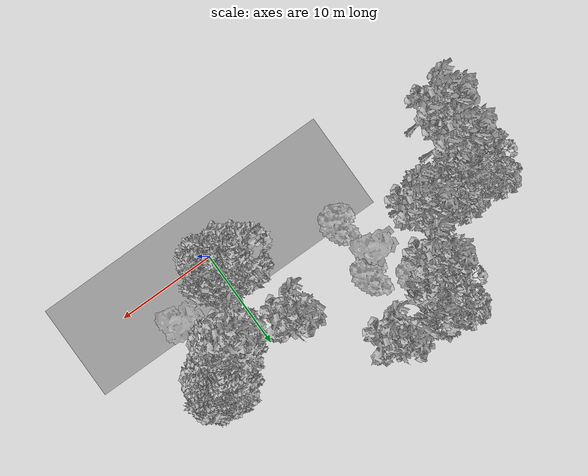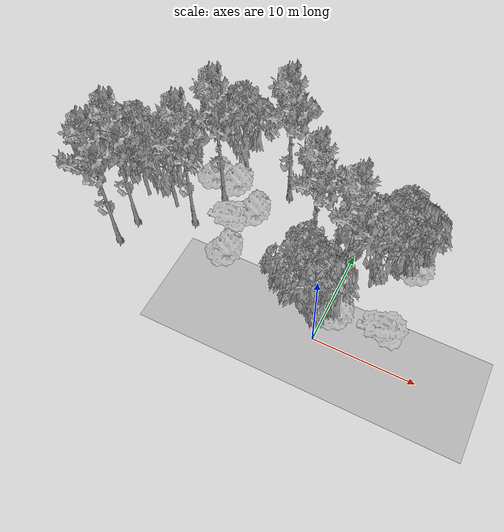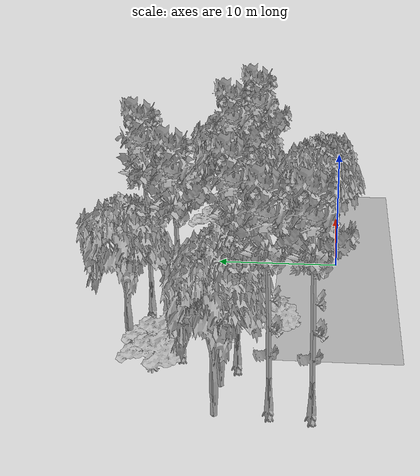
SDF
<sdf version="1.7">
 <world name="default">
  <model name="ground_plane">
   <static>1</static>
   <link name="link">
    <collision name="collision">
     <pose>-50 0 0 0 -0 0</pose>
     <geometry><plane><normal>0 0 1</normal><size>100 100</size></plane></geometry>
     <surface><contact><ode><min_depth>0.01</min_depth><max_vel>0</max_vel></ode></contact></surface>
    </collision>
    <visual name="grass">
     <cast_shadows>0</cast_shadows>
     <geometry>
      <mesh>
       <scale>0.5814285714285714 0.18142857142857144 0.1</scale>
       <uri>file://grass_plane/meshes/grass_plane.dae</uri>
      </mesh>
     </geometry>
    </visual>
   </link>
  </model>
  <model name="Tree 1">
   <static>1</static>
   <pose>-14.95214326042474 12.86118347821349 0 1.57079 -0 0</pose>
   <link name="link">
    <collision name="collision">
     <geometry><mesh><scale>4 2.5 4</scale><uri>model://tree_1/meshes/tree_1.obj</uri></mesh></geometry>
    </collision>
    <visual name="visual">
     <geometry><mesh><scale>4 2.5 4</scale><uri>model://tree_1/meshes/tree_1.obj</uri></mesh></geometry>
    </visual>
   </link>
  </model>
  <model name="Tree 4">
   <static>1</static>
   <pose>5.58407054845911 3.052981912878497 0 1.57079 -0 0</pose>
   <link name="link">
    <collision name="collision">
     <geometry><mesh><scale>3 2 3</scale><uri>model://tree_3/meshes/tree_3.obj</uri></mesh></geometry>
    </collision>
    <visual name="visual">
     <geometry><mesh><scale>3 2 3</scale><uri>model://tree_3/meshes/tree_3.obj</uri></mesh></geometry>
    </visual>
   </link>
  </model>
  <model name="Tree 15">
   <static>1</static>
   <pose>-22.051231511386494 4.27168029875806 0 1.57079 -0 0</pose>
   <link name="link">
    <collision name="collision">
     <geometry><mesh><scale>3.5 5 3.5</scale><uri>model://tree_9/meshes/tree_9.obj</uri></mesh></geometry>
    </collision>
    <visual name="visual">
     <geometry><mesh><scale>3.5 5 3.5</scale><uri>model://tree_9/meshes/tree_9.obj</uri></mesh></geometry>
    </visual>
   </link>
  </model>
  <model name="Tree 42">
   <static>1</static>
   <pose>4.733336476455996 9.573123390964305 0 1.57079 -0 0</pose>
   <link name="link">
    <collision name="collision">
     <geometry><mesh><scale>3.5 5 3.5</scale><uri>model://tree_2/meshes/tree_2.obj</uri></mesh></geometry>
    </collision>
    <visual name="visual">
     <geometry><mesh><scale>3.5 5 3.5</scale><uri>model://tree_2/meshes/tree_2.obj</uri></mesh></geometry>
    </visual>
   </link>
  </model>
  <model name="Tree 46">
   <static>1</static>
   <pose>5.954832692624549 10.95492946948189 0 1.57079 -0 0</pose>
   <link name="link">
    <collision name="collision">
     <geometry><mesh><scale>4 2.5 4</scale><uri>model://tree_1/meshes/tree_1.obj</uri></mesh></geometry>
    </collision>
    <visual name="visual">
     <geometry><mesh><scale>4 2.5 4</scale><uri>model://tree_1/meshes/tree_1.obj</uri></mesh></geometry>
    </visual>
   </link>
  </model>
  <model name="Tree 47">
   <static>1</static>
   <pose>-11.567636651969373 10.23903266482154 0 1.57079 -0 0</pose>
   <link name="link">
    <collision name="collision">
     <geometry><mesh><scale>4 2.5 4</scale><uri>model://tree_1/meshes/tree_1.obj</uri></mesh></geometry>
    </collision>
    <visual name="visual">
     <geometry><mesh><scale>4 2.5 4</scale><uri>model://tree_1/meshes/tree_1.obj</uri></mesh></geometry>
    </visual>
   </link>
  </model>
  <model name="Tree 57">
   <static>1</static>
   <pose>-1.949571450964001 2.142068206218301 0 1.57079 -0 0</pose>
   <link name="link">
    <collision name="collision">
     <geometry><mesh><scale>3.5 5 3.5</scale><uri>model://tree_2/meshes/tree_2.obj</uri></mesh></geometry>
    </collision>
    <visual name="visual">
     <geometry><mesh><scale>3.5 5 3.5</scale><uri>model://tree_2/meshes/tree_2.obj</uri></mesh></geometry>
    </visual>
   </link>
  </model>
  <model name="Tree 60">
   <static>1</static>
   <pose>-0.6481637504976092 1.3012135888520397 0 1.57079 -0 0</pose>
   <link name="link">
    <collision name="collision">
     <geometry><mesh><scale>3.5 5 3.5</scale><uri>model://tree_2/meshes/tree_2.obj</uri></mesh></geometry>
    </collision>
    <visual name="visual">
     <geometry><mesh><scale>3.5 5 3.5</scale><uri>model://tree_2/meshes/tree_2.obj</uri></mesh></geometry>
    </visual>
   </link>
  </model>
  <model name="Tree 76">
   <static>1</static>
   <pose>-22.383585650882107 1.464619174953583 0 1.57079 -0 0</pose>
   <link name="link">
    <collision name="collision">
     <geometry><mesh><scale>3.5 5 3.5</scale><uri>model://tree_9/meshes/tree_9.obj</uri></mesh></geometry>
    </collision>
    <visual name="visual">
     <geometry><mesh><scale>3.5 5 3.5</scale><uri>model://tree_9/meshes/tree_9.obj</uri></mesh></geometry>
    </visual>
   </link>
  </model>
  <model name="Tree 81">
   <static>1</static>
   <pose>-11.864375615900691 4.690574913838553 0 1.57079 -0 0</pose>
   <link name="link">
    <collision name="collision">
     <geometry><mesh><scale>4 2.5 4</scale><uri>model://tree_1/meshes/tree_1.obj</uri></mesh></geometry>
    </collision>
    <visual name="visual">
     <geometry><mesh><scale>4 2.5 4</scale><uri>model://tree_1/meshes/tree_1.obj</uri></mesh></geometry>
    </visual>
   </link>
  </model>
  <model name="Tree 85">
   <static>1</static>
   <pose>-22.88806600378796 7.778996320906433 0 1.57079 -0 0</pose>
   <link name="link">
    <collision name="collision">
     <geometry><mesh><scale>3.5 5 3.5</scale><uri>model://tree_2/meshes/tree_2.obj</uri></mesh></geometry>
    </collision>
    <visual name="visual">
     <geometry><mesh><scale>3.5 5 3.5</scale><uri>model://tree_2/meshes/tree_2.obj</uri></mesh></geometry>
    </visual>
   </link>
  </model>
  <model name="Tree 88">
   <static>1</static>
   <pose>-13.054785930468363 8.128150034350103 0 1.57079 -0 0</pose>
   <link name="link">
    <collision name="collision">
     <geometry><mesh><scale>3 2 3</scale><uri>model://tree_3/meshes/tree_3.obj</uri></mesh></geometry>
    </collision>
    <visual name="visual">
     <geometry><mesh><scale>3 2 3</scale><uri>model://tree_3/meshes/tree_3.obj</uri></mesh></geometry>
    </visual>
   </link>
  </model>
  <model name="Tree 96">
   <static>1</static>
   <pose>2.570727670415721 7.605812344055046 0 1.57079 -0 0</pose>
   <link name="link">
    <collision name="collision">
     <geometry><mesh><scale>3.5 5 3.5</scale><uri>model://tree_2/meshes/tree_2.obj</uri></mesh></geometry>
    </collision>
    <visual name="visual">
     <geometry><mesh><scale>3.5 5 3.5</scale><uri>model://tree_2/meshes/tree_2.obj</uri></mesh></geometry>
    </visual>
   </link>
  </model>
  <model name="Tree 99">
   <static>1</static>
   <pose>-15.365767508985464 10.97204150997408 0 1.57079 -0 0</pose>
   <link name="link">
    <collision name="collision">
     <geometry><mesh><scale>3.5 5 3.5</scale><uri>model://tree_9/meshes/tree_9.obj</uri></mesh></geometry>
    </collision>
    <visual name="visual">
     <geometry><mesh><scale>3.5 5 3.5</scale><uri>model://tree_9/meshes/tree_9.obj</uri></mesh></geometry>
    </visual>
   </link>
  </model>
  <model name="Tree 108">
   <static>1</static>
   <pose>-9.205130623879555 14.187765769462107 0 1.57079 -0 0</pose>
   <link name="link">
    <collision name="collision">
     <geometry><mesh><scale>3.5 5 3.5</scale><uri>model://tree_9/meshes/tree_9.obj</uri></mesh></geometry>
    </collision>
    <visual name="visual">
     <geometry><mesh><scale>3.5 5 3.5</scale><uri>model://tree_9/meshes/tree_9.obj</uri></mesh></geometry>
    </visual>
   </link>
  </model>
  <model name="Tree 112">
   <static>1</static>
   <pose>0.5542585910200799 6.4444039798057595 0 1.57079 -0 0</pose>
   <link name="link">
    <collision name="collision">
     <geometry><mesh><scale>3.5 5 3.5</scale><uri>model://tree_9/meshes/tree_9.obj</uri></mesh></geometry>
    </collision>
    <visual name="visual">
     <geometry><mesh><scale>3.5 5 3.5</scale><uri>model://tree_9/meshes/tree_9.obj</uri></mesh></geometry>
    </visual>
   </link>
  </model>
  <model name="Tree 114">
   <static>1</static>
   <pose>-16.606100020956497 6.841185801549042 0 1.57079 -0 0</pose>
   <link name="link">
    <collision name="collision">
     <geometry><mesh><scale>3.5 5 3.5</scale><uri>model://tree_9/meshes/tree_9.obj</uri></mesh></geometry>
    </collision>
    <visual name="visual">
     <geometry><mesh><scale>3.5 5 3.5</scale><uri>model://tree_9/meshes/tree_9.obj</uri></mesh></geometry>
    </visual>
   </link>
  </model>
  <model name="Tree 118">
   <static>1</static>
   <pose>-17.476179902937165 12.734968612178676 0 1.57079 -0 0</pose>
   <link name="link">
    <collision name="collision">
     <geometry><mesh><scale>4 2.5 4</scale><uri>model://tree_1/meshes/tree_1.obj</uri></mesh></geometry>
    </collision>
    <visual name="visual">
     <geometry><mesh><scale>4 2.5 4</scale><uri>model://tree_1/meshes/tree_1.obj</uri></mesh></geometry>
    </visual>
   </link>
  </model>
  <model name="Tree 130">
   <static>1</static>
   <pose>-3.7527997905690214 8.12473705205587 0 1.57079 -0 0</pose>
   <link name="link">
    <collision name="collision">
     <geometry><mesh><scale>3.5 5 3.5</scale><uri>model://tree_9/meshes/tree_9.obj</uri></mesh></geometry>
    </collision>
    <visual name="visual">
     <geometry><mesh><scale>3.5 5 3.5</scale><uri>model://tree_9/meshes/tree_9.obj</uri></mesh></geometry>
    </visual>
   </link>
  </model>
  <model name="Tree 140">
   <static>1</static>
   <pose>-14.766516817686735 14.888660278424009 0 1.57079 -0 0</pose>
   <link name="link">
    <collision name="collision">
     <geometry><mesh><scale>3.5 5 3.5</scale><uri>model://tree_2/meshes/tree_2.obj</uri></mesh></geometry>
    </collision>
    <visual name="visual">
     <geometry><mesh><scale>3.5 5 3.5</scale><uri>model://tree_2/meshes/tree_2.obj</uri></mesh></geometry>
    </visual>
   </link>
  </model>
  <model name="Tree 167">
   <static>1</static>
   <pose>4.420225656662026 9.663042216503158 0 1.57079 -0 0</pose>
   <link name="link">
    <collision name="collision">
     <geometry><mesh><scale>3.5 5 3.5</scale><uri>model://tree_2/meshes/tree_2.obj</uri></mesh></geometry>
    </collision>
    <visual name="visual">
     <geometry><mesh><scale>3.5 5 3.5</scale><uri>model://tree_2/meshes/tree_2.obj</uri></mesh></geometry>
    </visual>
   </link>
  </model>
  <model name="Tree 174">
   <static>1</static>
   <pose>-19.389647001577604 7.729155616823856 0 1.57079 -0 0</pose>
   <link name="link">
    <collision name="collision">
     <geometry><mesh><scale>3.5 5 3.5</scale><uri>model://tree_2/meshes/tree_2.obj</uri></mesh></geometry>
    </collision>
    <visual name="visual">
     <geometry><mesh><scale>3.5 5 3.5</scale><uri>model://tree_2/meshes/tree_2.obj</uri></mesh></geometry>
    </visual>
   </link>
  </model>
  <model name="Tree 177">
   <static>1</static>
   <pose>0.7033930972440317 3.1537388130171777 0 1.57079 -0 0</pose>
   <link name="link">
    <collision name="collision">
     <geometry><mesh><scale>4 2.5 4</scale><uri>model://tree_1/meshes/tree_1.obj</uri></mesh></geometry>
    </collision>
    <visual name="visual">
     <geometry><mesh><scale>4 2.5 4</scale><uri>model://tree_1/meshes/tree_1.obj</uri></mesh></geometry>
    </visual>
   </link>
  </model>
 </world>
</sdf>
